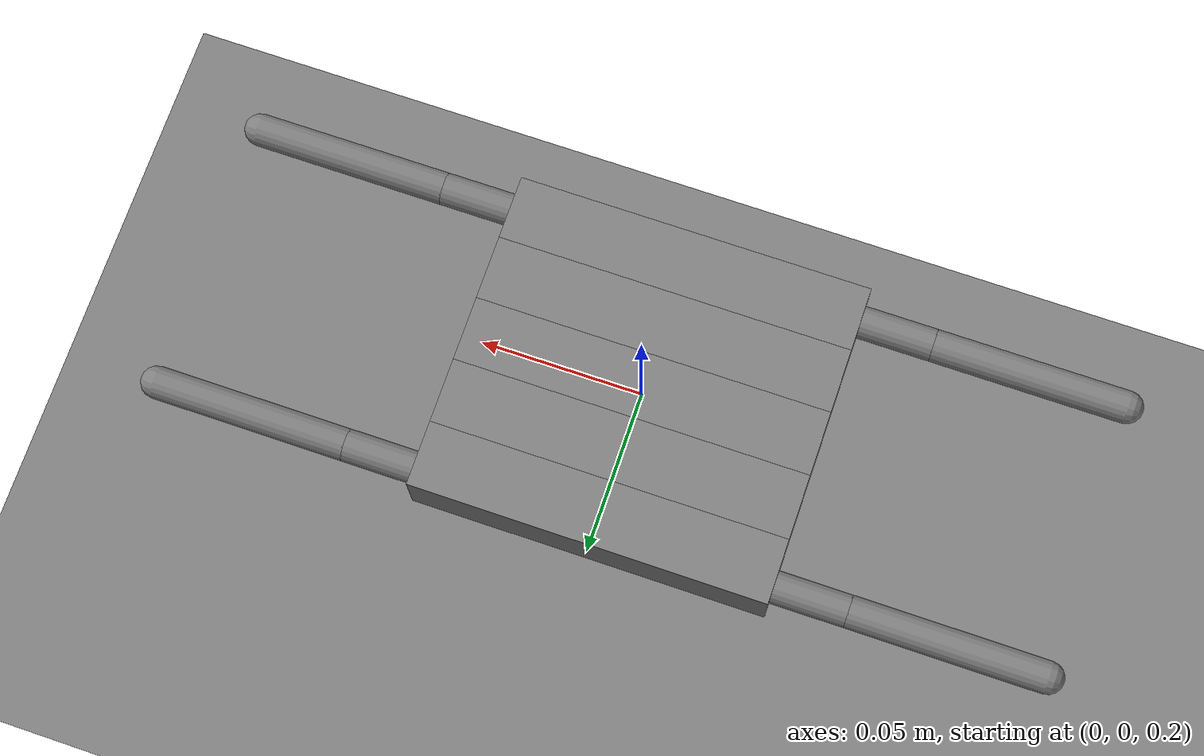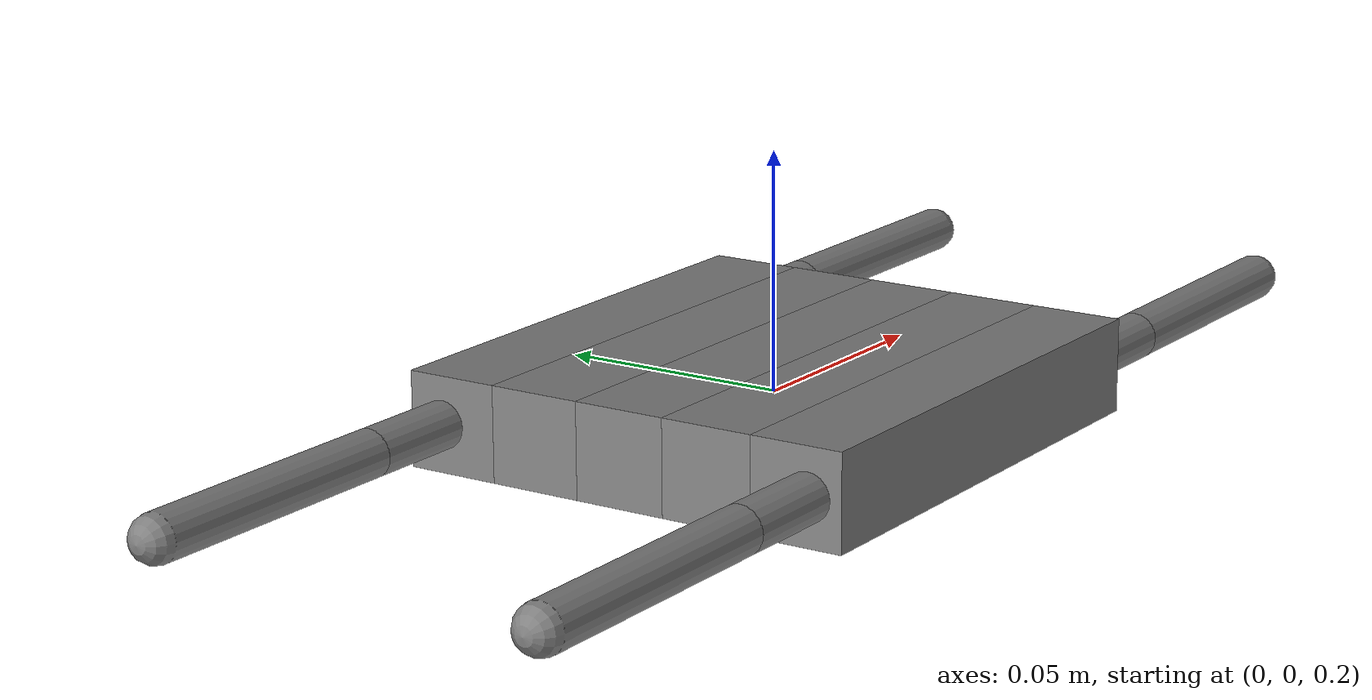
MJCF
<mujoco model="wise-dino">
    <!-- Visual Parameters -->
    <visual>
        <map force="0.1" zfar="30"/>
        <rgba haze="0.15 0.25 0.35 1"/>
        <global offwidth="2560" offheight="1440" elevation="-20" azimuth="120"/>
    </visual>
    <!-- Defaults -->
    <default>
        <motor ctrlrange="-1 1" ctrllimited="true"/>
        <geom friction=".7" solimp=".9 .99 .003" solref=".015 1"/>
        <joint damping=".2" armature=".01" solimplimit="0 .99 .01"/>
    </default>
    <!-- Model -->
    <worldbody>
        <geom name="floor" size="0 0 .05" type="plane" condim="3"/>
        <light directional="false" diffuse=".8 .8 .8" specular=".2 .2 .2" pos="0 0 5" dir="0 0 -1"/>
        <body name="Chassis" pos="0 0 0.2">
            <freejoint/>
            <!-- Main body's boxes-->
            <geom type="box" fromto="-0.055 0 0 0.055 0 0" size="0.01"/>
            <geom type="box" fromto="-0.055 0.02 0 0.055 0.02 0" size="0.01"/>
            <geom type="box" fromto="-0.055 -0.02 0 0.055 -0.02 0" size="0.01"/>
            <geom type="box" fromto="-0.055 -0.04 0 0.055 -0.04 0" size="0.01"/>
            <geom type="box" fromto="-0.055 0.04 0 0.055 0.04 0" size="0.01"/>

            <body name="Right Top arm" pos="0.0475 0.0425 0">
                <joint name="RT_joint" type="hinge" axis="0 0 1" limited="true" range="0 100"/>
                <geom type="capsule" fromto="0 0 0 0.03 0 0" size="0.005"/>
                <body name="Right Top_Y arm" pos="0.03 0 0">
                    <joint name="RTY_joint" type="hinge" axis="0 1 0" limited="true" range="0 100"/>
                    <geom type="capsule" fromto="0 0 0 0.06 0 0" size="0.005"/>
                </body>
            </body>

            <body name="Left Top arm" pos="-0.0475 0.0425 0">
                <joint name="LT_joint" type="hinge" axis="0 0 -1" limited="true" range="0 100"/>
                <geom type="capsule" fromto="0 0 0 -0.03 0 0" size="0.005"/>
                <body name="Left Top_Y arm" pos="-0.03 0 0">
                    <joint name="LTY_joint" type="hinge" axis="0 -1 0" limited="true" range="0 100"/>
                <geom type="capsule" fromto="0 0 0 -0.06 0 0" size="0.005"/>
                </body>
            </body>

            <body name="Right Bottom arm" pos="0.0475 -0.0425 0">
                <joint name="RB_joint" type="hinge" axis="0 0 -1" limited="true" range="0 100"/>
                <geom type="capsule" fromto="0 0 0 0.03 0 0" size="0.005"/>
                <body name="Right Bottom_Y arm" pos="0.03 0 0">
                    <joint name="RBY_joint" type="hinge" axis="0 1 0" limited="true" range="0 100"/>
                    <geom type="capsule" fromto="0 0 0 0.06 0 0" size="0.005"/>
                </body>
            </body>

            <body name="Left Bottom arm" pos="-0.0475 -0.0425 0">
                <joint name="LB_joint" type="hinge" axis="0 0 1" limited="true" range="0 100"/>
                <geom type="capsule" fromto="0 0 0 -0.03 0 0" size="0.005"/>
                <body name="Left Bottom_Y arm" pos="-0.03 0 0">
                    <joint name="LBY_joint" type="hinge" axis="0 -1 0" limited="true" range="0 100"/>
                <geom type="capsule" fromto="0 0 0 -0.06 0 0" size="0.005"/>
                </body>
            </body>

        </body>
    </worldbody>
    <actuator>
        <position joint="RT_joint" kp="50"/>
        <position joint="RTY_joint" kp="50"/>
        <position joint="LT_joint" kp="50"/>
        <position joint="LTY_joint" kp="50"/>
        <position joint="RB_joint" kp="50"/>
        <position joint="RBY_joint" kp="50"/>
        <position joint="LB_joint" kp="50"/>
        <position joint="LBY_joint" kp="50"/>
    </actuator>
</mujoco>
